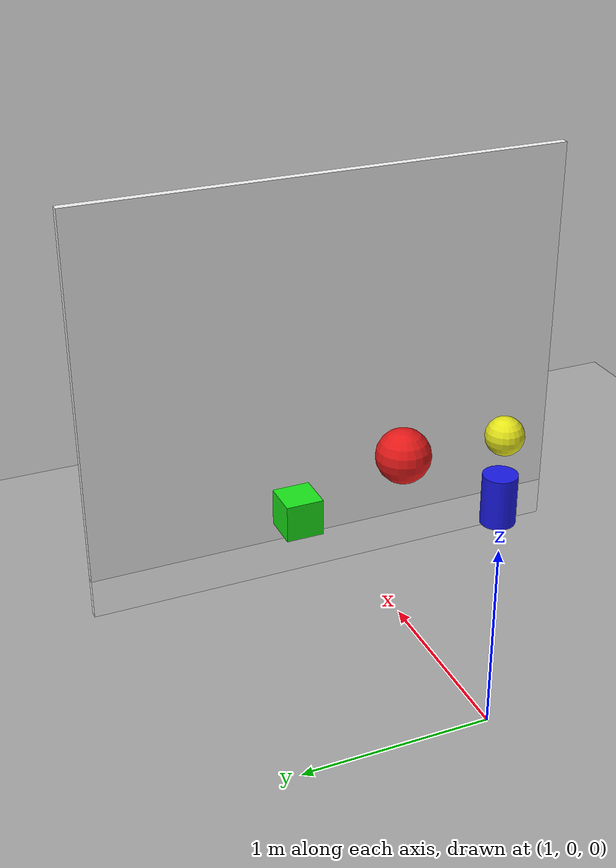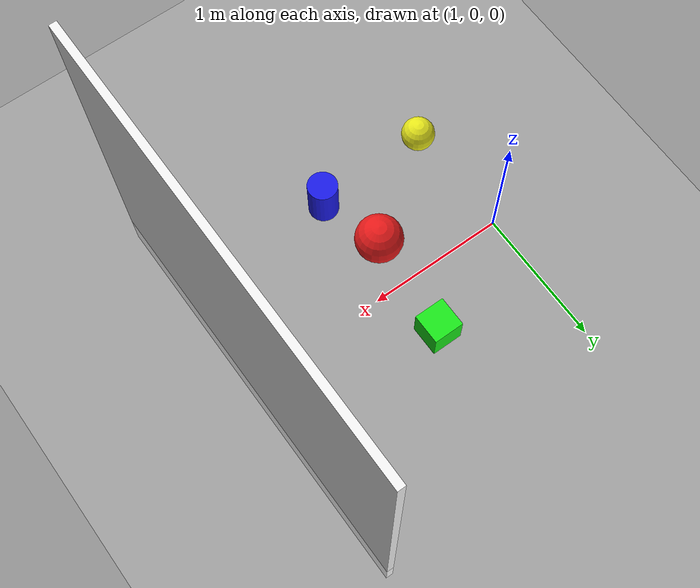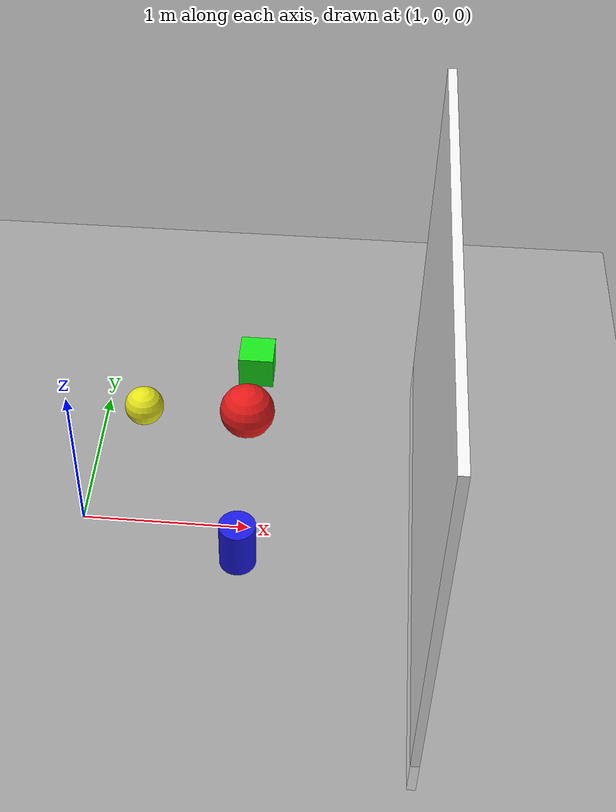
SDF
<?xml version="1.0"?>
<sdf version="1.6">
  <world name="camera_demo_world">

    <!-- 零重力 -->
    <physics type="ode">
      <max_step_size>0.001</max_step_size>
      <real_time_factor>1.0</real_time_factor>
      <real_time_update_rate>1000</real_time_update_rate>
      <gravity>0 0 0</gravity>
    </physics>

    <!-- 明亮场景 -->
    <scene>
      <ambient>0.6 0.6 0.6 1.0</ambient>
      <background>0.3 0.6 0.9 1.0</background>
      <shadows>true</shadows>
    </scene>

    <!-- 主光源：太阳 -->
    <light type="directional" name="sun">
      <cast_shadows>true</cast_shadows>
      <pose>0 0 10 0 0 0</pose>
      <diffuse>0.9 0.9 0.9 1</diffuse>
      <specular>0.3 0.3 0.3 1</specular>
      <direction>-0.5 0.1 -0.9</direction>
    </light>

    <!-- 补光（消除暗面） -->
    <light type="directional" name="fill_light">
      <cast_shadows>false</cast_shadows>
      <pose>0 0 10 0 0 0</pose>
      <diffuse>0.4 0.4 0.4 1</diffuse>
      <specular>0.1 0.1 0.1 1</specular>
      <direction>0.5 -0.3 -0.7</direction>
    </light>

    <!-- 地面 -->
    <model name="ground_plane">
      <static>true</static>
      <link name="link">
        <collision name="collision">
          <geometry>
            <plane><normal>0 0 1</normal><size>100 100</size></plane>
          </geometry>
        </collision>
        <visual name="visual">
          <cast_shadows>false</cast_shadows>
          <geometry>
            <plane><normal>0 0 1</normal><size>100 100</size></plane>
          </geometry>
          <material>
            <script>
              <uri>file://media/materials/scripts/gazebo.material</uri>
              <name>Gazebo/Grey</name>
            </script>
          </material>
        </visual>
      </link>
    </model>

    <!-- ========== 机器人前方的彩色物体（让相机有东西拍） ========== -->

    <!-- 红色球 -->
    <model name="red_ball">
      <static>true</static>
      <pose>2.0 0 1.0 0 0 0</pose>
      <link name="link">
        <visual name="visual">
          <geometry><sphere><radius>0.15</radius></sphere></geometry>
          <material>
            <ambient>0.9 0.1 0.1 1</ambient>
            <diffuse>0.9 0.1 0.1 1</diffuse>
          </material>
        </visual>
      </link>
    </model>

    <!-- 绿色方块 -->
    <model name="green_box">
      <static>true</static>
      <pose>2.0 0.6 0.8 0 0 0</pose>
      <link name="link">
        <visual name="visual">
          <geometry><box><size>0.2 0.2 0.2</size></box></geometry>
          <material>
            <ambient>0.1 0.9 0.1 1</ambient>
            <diffuse>0.1 0.9 0.1 1</diffuse>
          </material>
        </visual>
      </link>
    </model>

    <!-- 蓝色圆柱 -->
    <model name="blue_cylinder">
      <static>true</static>
      <pose>2.0 -0.6 0.6 0 0 0</pose>
      <link name="link">
        <visual name="visual">
          <geometry><cylinder><radius>0.1</radius><length>0.3</length></cylinder></geometry>
          <material>
            <ambient>0.1 0.1 0.9 1</ambient>
            <diffuse>0.1 0.1 0.9 1</diffuse>
          </material>
        </visual>
      </link>
    </model>

    <!-- 黄色球 -->
    <model name="yellow_ball">
      <static>true</static>
      <pose>1.5 -0.3 1.3 0 0 0</pose>
      <link name="link">
        <visual name="visual">
          <geometry><sphere><radius>0.1</radius></sphere></geometry>
          <material>
            <ambient>0.9 0.9 0.1 1</ambient>
            <diffuse>0.9 0.9 0.1 1</diffuse>
          </material>
        </visual>
      </link>
    </model>

    <!-- 白色大背景板（提供对比） -->
    <model name="backdrop">
      <static>true</static>
      <pose>3.0 0 1.0 0 0 0</pose>
      <link name="link">
        <visual name="visual">
          <geometry><box><size>0.05 3.0 2.5</size></box></geometry>
          <material>
            <ambient>0.95 0.95 0.95 1</ambient>
            <diffuse>0.95 0.95 0.95 1</diffuse>
          </material>
        </visual>
      </link>
    </model>

  </world>
</sdf>
